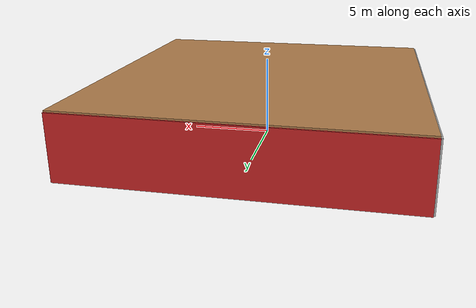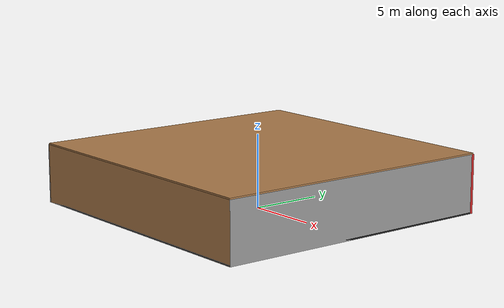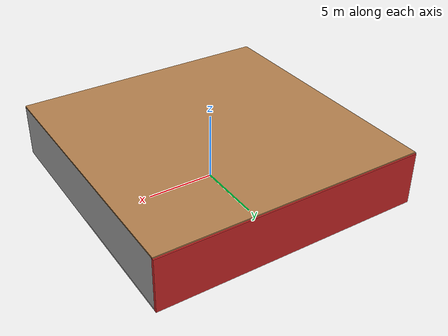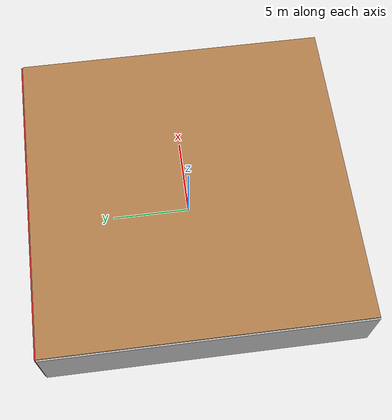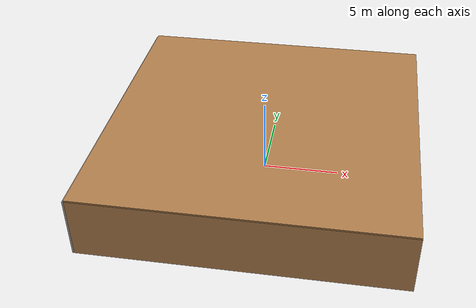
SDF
<sdf version="1.4">
 <world name="default">
  <physics type="ode">
   <max_step_size>0.001</max_step_size>
   <real_time_factor>1</real_time_factor>
   <real_time_update_rate>1000</real_time_update_rate>
   <gravity>0 0 -9.8</gravity>
  </physics>
  <scene><ambient>0.4 0.4 0.4 1</ambient><background>0.7 0.7 0.7 1</background><shadows>1</shadows></scene>
  <model name="Surrounding">
   <static>1</static>
   <link name="Ceiling">
    <collision name="Ceiling_Collision"><geometry><box><size>20 20 0.1</size></box></geometry></collision>
    <visual name="Ceiling_Visual">
     <geometry><box><size>20 20 0.1</size></box></geometry>
     <material>
      <script><uri>file://media/materials/scripts/gazebo.material</uri><name>Gazebo/Wood</name></script>
     </material>
    </visual>
    <pose>0 0 4.05 0 0 0</pose>
   </link>
   <link name="Wall_South">
    <collision name="Wall_South_Collision">
     <geometry><box><size>20 0 4</size></box></geometry>
     <pose>0 0 2 0 -0 0</pose>
    </collision>
    <visual name="Wall_South_Visual">
     <pose>0 0 2 0 -0 0</pose>
     <geometry><box><size>20 0 4</size></box></geometry>
     <material>
      <script><uri>file://media/materials/scripts/gazebo.material</uri><name>Gazebo/WoodFloor</name></script>
     </material>
    </visual>
    <velocity_decay><linear>0</linear><angular>0</angular></velocity_decay>
    <pose>0 -10 0 0 -0 0</pose>
   </link>
   <link name="Wall_East">
    <collision name="Wall_21_Collision">
     <geometry><box><size>20 0 4</size></box></geometry>
     <pose>0 0 2 0 -0 0</pose>
    </collision>
    <visual name="Wall_21_Visual">
     <pose>0 0 2 0 -0 0</pose>
     <geometry><box><size>20 0 4</size></box></geometry>
     <material>
      <script><uri>file://media/materials/scripts/gazebo.material</uri><name>Gazebo/GreyGradientSky</name></script>
     </material>
    </visual>
    <velocity_decay><linear>0</linear><angular>0</angular></velocity_decay>
    <pose>10 0 0 0 -0 1.5708</pose>
   </link>
   <link name="Wall_North">
    <collision name="Wall_22_Collision">
     <geometry><box><size>20 0.2 4</size></box></geometry>
     <pose>0 0 2 0 -0 0</pose>
    </collision>
    <visual name="Wall_22_Visual">
     <pose>0 0 2 0 -0 0</pose>
     <geometry><box><size>20 0.2 4</size></box></geometry>
     <material>
      <script><uri>file://media/materials/scripts/gazebo.material</uri><name>Gazebo/Red</name></script>
     </material>
    </visual>
    <velocity_decay><linear>0</linear><angular>0</angular></velocity_decay>
    <pose>0 10 0 0 -0 0</pose>
   </link>
   <link name="Wall_West">
    <collision name="Wall_23_Collision">
     <geometry><box><size>20 0.2 4</size></box></geometry>
     <pose>0 0 2 0 -0 0</pose>
    </collision>
    <visual name="Wall_23_Visual">
     <pose>0 0 2 0 -0 0</pose>
     <geometry><box><size>20 0.2 4</size></box></geometry>
     <material>
      <script><uri>file://media/materials/scripts/gazebo.material</uri><name>Gazebo/CloudySky</name></script>
     </material>
    </visual>
    <velocity_decay><linear>0</linear><angular>0</angular></velocity_decay>
    <pose>-10 0 0 0 0 -1.5708</pose>
   </link>
   <link name="Ground_link">
    <collision name="collision">
     <pose>0 0 .05 0 -0 0</pose>
     <geometry><box><size>20 20 0.1</size></box></geometry>
    </collision>
    <visual name="visual">
     <pose>0 0 .05 0 -0 0</pose>
     <geometry><box><size>20 20 0.1</size></box></geometry>
     <material>
      <script><uri>file://media/materials/scripts/gazebo.material</uri><name>Gazebo/FlatBlack</name></script>
     </material>
    </visual>
   </link>
   <static>1</static>
  </model>
  <spherical_coordinates>
   <surface_model>EARTH_WGS84</surface_model>
   <latitude_deg>0</latitude_deg>
   <longitude_deg>0</longitude_deg>
   <elevation>0</elevation>
   <heading_deg>0</heading_deg>
  </spherical_coordinates>
  <light name="lightball_0" type="diffuse">
   <diffuse>0.8 0.8 0.8 1</diffuse>
   <specular>0.2 0.2 0.2 1</specular>
   <attenuation>
    <range>100</range>
    <constant>0.7</constant>
    <linear>0.01</linear>
    <quadratic>0.001</quadratic>
   </attenuation>
   <direction>-0.5 0.1 -0.9</direction>
   <pose>-2.35732179589 4.60535349016 2.04243065777 0 0 0</pose>
  </light>
  <light name="lightball_1" type="diffuse">
   <diffuse>0.8 0.8 0.8 1</diffuse>
   <specular>0.2 0.2 0.2 1</specular>
   <attenuation>
    <range>100</range>
    <constant>0.7</constant>
    <linear>0.01</linear>
    <quadratic>0.001</quadratic>
   </attenuation>
   <direction>-0.5 0.1 -0.9</direction>
   <pose>-4.43184589765 3.81047980171 0.956610426185 0 0 0</pose>
  </light>
  <light name="lightball_2" type="diffuse">
   <diffuse>0.8 0.8 0.8 1</diffuse>
   <specular>0.2 0.2 0.2 1</specular>
   <attenuation>
    <range>100</range>
    <constant>0.7</constant>
    <linear>0.01</linear>
    <quadratic>0.001</quadratic>
   </attenuation>
   <direction>-0.5 0.1 -0.9</direction>
   <pose>2.52548526726 -0.144671937285 1.86689301867 0 0 0</pose>
  </light>
  <light name="lightball_3" type="diffuse">
   <diffuse>0.8 0.8 0.8 1</diffuse>
   <specular>0.2 0.2 0.2 1</specular>
   <attenuation>
    <range>100</range>
    <constant>0.7</constant>
    <linear>0.01</linear>
    <quadratic>0.001</quadratic>
   </attenuation>
   <direction>-0.5 0.1 -0.9</direction>
   <pose>-3.14672533132 -3.49658847761 3.46323921667 0 0 0</pose>
  </light>
  <light name="lightball_4" type="diffuse">
   <diffuse>0.8 0.8 0.8 1</diffuse>
   <specular>0.2 0.2 0.2 1</specular>
   <attenuation>
    <range>100</range>
    <constant>0.7</constant>
    <linear>0.01</linear>
    <quadratic>0.001</quadratic>
   </attenuation>
   <direction>-0.5 0.1 -0.9</direction>
   <pose>8.57379912786 -2.42152381555 3.41891960337 0 0 0</pose>
  </light>
  <light name="lightball_5" type="diffuse">
   <diffuse>0.8 0.8 0.8 1</diffuse>
   <specular>0.2 0.2 0.2 1</specular>
   <attenuation>
    <range>100</range>
    <constant>0.7</constant>
    <linear>0.01</linear>
    <quadratic>0.001</quadratic>
   </attenuation>
   <direction>-0.5 0.1 -0.9</direction>
   <pose>8.21720585625 5.76323944768 3.55144426671 0 0 0</pose>
  </light>
  <light name="lightball_6" type="diffuse">
   <diffuse>0.8 0.8 0.8 1</diffuse>
   <specular>0.2 0.2 0.2 1</specular>
   <attenuation>
    <range>100</range>
    <constant>0.7</constant>
    <linear>0.01</linear>
    <quadratic>0.001</quadratic>
   </attenuation>
   <direction>-0.5 0.1 -0.9</direction>
   <pose>-5.63985321949 3.84670569365 1.55603379661 0 0 0</pose>
  </light>
  <light name="lightball_7" type="diffuse">
   <diffuse>0.8 0.8 0.8 1</diffuse>
   <specular>0.2 0.2 0.2 1</specular>
   <attenuation>
    <range>100</range>
    <constant>0.7</constant>
    <linear>0.01</linear>
    <quadratic>0.001</quadratic>
   </attenuation>
   <direction>-0.5 0.1 -0.9</direction>
   <pose>-5.61335895839 0.356429351113 0.654023161492 0 0 0</pose>
  </light>
  <light name="lightball_8" type="diffuse">
   <diffuse>0.8 0.8 0.8 1</diffuse>
   <specular>0.2 0.2 0.2 1</specular>
   <attenuation>
    <range>100</range>
    <constant>0.7</constant>
    <linear>0.01</linear>
    <quadratic>0.001</quadratic>
   </attenuation>
   <direction>-0.5 0.1 -0.9</direction>
   <pose>-7.18749909338 4.88622989466 3.27669822251 0 0 0</pose>
  </light>
  <light name="lightball_9" type="diffuse">
   <diffuse>0.8 0.8 0.8 1</diffuse>
   <specular>0.2 0.2 0.2 1</specular>
   <attenuation>
    <range>100</range>
    <constant>0.7</constant>
    <linear>0.01</linear>
    <quadratic>0.001</quadratic>
   </attenuation>
   <direction>-0.5 0.1 -0.9</direction>
   <pose>-3.62628600722 -3.08996708629 3.03408803412 0 0 0</pose>
  </light>
  <light name="lightball_10" type="diffuse">
   <diffuse>0.8 0.8 0.8 1</diffuse>
   <specular>0.2 0.2 0.2 1</specular>
   <attenuation>
    <range>100</range>
    <constant>0.7</constant>
    <linear>0.01</linear>
    <quadratic>0.001</quadratic>
   </attenuation>
   <direction>-0.5 0.1 -0.9</direction>
   <pose>-4.30892395352 5.57395772339 2.10518637874 0 0 0</pose>
  </light>
  <light name="lightball_11" type="diffuse">
   <diffuse>0.8 0.8 0.8 1</diffuse>
   <specular>0.2 0.2 0.2 1</specular>
   <attenuation>
    <range>100</range>
    <constant>0.7</constant>
    <linear>0.01</linear>
    <quadratic>0.001</quadratic>
   </attenuation>
   <direction>-0.5 0.1 -0.9</direction>
   <pose>-1.64197969532 -9.847175956 0.770879814654 0 0 0</pose>
  </light>
  <include><uri>model://table</uri><pose>-4.33138954016 -7.7725645245 0 0 0 0.266247911628</pose></include>
  <include><uri>model://table</uri><pose>-3.7597292352 -0.789506643291 0 0 0 2.81997083958</pose></include>
  <include><uri>model://cabinet</uri><pose>-0.809857118915 -7.29499409689 0 0 0 2.39865174166</pose></include>
  <include><uri>model://cabinet</uri><pose>-2.23773035873 3.95229600372 0 0 0 2.34059976484</pose></include>
  <include><uri>model://cabinet</uri><pose>0.703108078439 -4.32194665772 0 0 0 2.33751918106</pose></include>
  <include><uri>model://table</uri><pose>0.837589796689 1.37601359295 0 0 0 2.19773090668</pose></include>
  <include>
   <uri>model://construction_cone</uri>
   <pose>4.35784444687 -2.06656703953 0 0 0 0.0664224990053</pose>
  </include>
  <include><uri>model://cabinet</uri><pose>6.94610095863 -8.22426434663 0 0 0 0.919298037709</pose></include>
  <include><uri>model://table</uri><pose>7.87706691788 -1.38755043342 0 0 0 3.09863297173</pose></include>
 </world>
</sdf>

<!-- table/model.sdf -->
<sdf version="1.5">
  <model name="table">
    <static>true</static>
    <link name="link">
      <collision name="surface">
        <pose>0 0 1.0 0 0 0</pose>
        <geometry>
          <box>
            <size>1.5 0.8 0.03</size>
          </box>
        </geometry>
        <surface>
          <friction>
            <ode>
              <mu>0.6</mu>
              <mu2>0.6</mu2>
            </ode>
          </friction>
        </surface>
      </collision>
      <visual name="visual1">
        <pose>0 0 1.0 0 0 0</pose>
        <geometry>
          <box>
            <size>1.5 0.8 0.03</size>
          </box>
        </geometry>
        <material>
          <script>
            <uri>model://media/materials/scripts/gazebo.material</uri>
            <name>Gazebo/Wood</name>
          </script>
        </material>
      </visual>
      <collision name="front_left_leg">
        <pose>0.68 0.38 0.5 0 0 0</pose>
        <geometry>
          <cylinder>
            <radius>0.02</radius>
            <length>1.0</length>
          </cylinder>
        </geometry>
      </collision>
      <visual name="front_left_leg">
        <pose>0.68 0.38 0.5 0 0 0</pose>
        <geometry>
          <cylinder>
            <radius>0.02</radius>
            <length>1.0</length>
          </cylinder>
        </geometry>
        <material>
          <script>
            <uri>model://media/materials/scripts/gazebo.material</uri>
            <name>Gazebo/Grey</name>
          </script>
        </material>
      </visual>
      <collision name="front_right_leg">
        <pose>0.68 -0.38 0.5 0 0 0</pose>
        <geometry>
          <cylinder>
            <radius>0.02</radius>
            <length>1.0</length>
          </cylinder>
        </geometry>
      </collision>
      <visual name="front_right_leg">
        <pose>0.68 -0.38 0.5 0 0 0</pose>
        <geometry>
          <cylinder>
            <radius>0.02</radius>
            <length>1.0</length>
          </cylinder>
        </geometry>
        <material>
          <script>
            <uri>model://media/materials/scripts/gazebo.material</uri>
            <name>Gazebo/Grey</name>
          </script>
        </material>
      </visual>
      <collision name="back_right_leg">
        <pose>-0.68 -0.38 0.5 0 0 0</pose>
        <geometry>
          <cylinder>
            <radius>0.02</radius>
            <length>1.0</length>
          </cylinder>
        </geometry>
      </collision>
      <visual name="back_right_leg">
        <pose>-0.68 -0.38 0.5 0 0 0</pose>
        <geometry>
          <cylinder>
            <radius>0.02</radius>
            <length>1.0</length>
          </cylinder>
        </geometry>
        <material>
          <script>
            <uri>model://media/materials/scripts/gazebo.material</uri>
            <name>Gazebo/Grey</name>
          </script>
        </material>
      </visual>
      <collision name="back_left_leg">
        <pose>-0.68 0.38 0.5 0 0 0</pose>
        <geometry>
          <cylinder>
            <radius>0.02</radius>
            <length>1.0</length>
          </cylinder>
        </geometry>
      </collision>
      <visual name="back_left_leg">
        <pose>-0.68 0.38 0.5 0 0 0</pose>
        <geometry>
          <cylinder>
            <radius>0.02</radius>
            <length>1.0</length>
          </cylinder>
        </geometry>
        <material>
          <script>
            <uri>model://media/materials/scripts/gazebo.material</uri>
            <name>Gazebo/Grey</name>
          </script>
        </material>
      </visual>
    </link>
  </model>
</sdf>

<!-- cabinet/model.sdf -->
<sdf version="1.5">
  <model name="cabinet">
    <static>true</static>
    <link name="cabinet_bottom_plate">
      <inertial>
        <pose>0 0 -1 0 0 0</pose>
        <inertia>
          <ixx>2.050000</ixx>
          <ixy>0</ixy>
          <ixz>0</ixz>
          <iyy>2.050000</iyy>
          <iyz>0</iyz>
          <izz>2.050000</izz>
        </inertia>
        <mass>25.000000</mass>
      </inertial>
      <collision name="cabinet_bottom_plate_geom">
        <pose>0 0 0.010000 0 0 0</pose>
        <geometry>
          <box>
            <size>0.450000 0.450000 0.020000</size>
          </box>
        </geometry>
      </collision>
      <visual name="cabinet_bottom_plate_geom_visual">
        <pose>0 0 0.010000 0 0 0</pose>
        <geometry>
          <box>
            <size>0.450000 0.450000 0.020000</size>
          </box>
        </geometry>
        <material>
          <script>
            <uri>model://media/materials/scripts/gazebo.material</uri>
            <name>Gazebo/Wood</name>
          </script>
        </material>
      </visual>
      <collision name="cabinet_bottom_plate_geom_cabinet_back_plate">
        <pose>0.235000 0 0.510000 0 0 0</pose>
        <geometry>
          <box>
            <size>0.020000 0.450000 1.020000</size>
          </box>
        </geometry>
      </collision>
      <visual name="cabinet_bottom_plate_geom_cabinet_back_plate_visual">
        <pose>0.235000 0 0.510000 0 0 0</pose>
        <geometry>
          <box>
            <size>0.020000 0.450000 1.020000</size>
          </box>
        </geometry>
        <material>
          <script>
            <uri>model://media/materials/scripts/gazebo.material</uri>
            <name>Gazebo/Wood</name>
          </script>
        </material>
      </visual>
      <collision name="cabinet_bottom_plate_geom_cabinet_left_plate">
        <pose>0 0.235000 0.510000 0 0 0</pose>
        <geometry>
          <box>
            <size>0.450000 0.020000 1.020000</size>
          </box>
        </geometry>
      </collision>
      <visual name="cabinet_bottom_plate_geom_cabinet_left_plate_visual">
        <pose>0 0.235000 0.510000 0 0 0</pose>
        <geometry>
          <box>
            <size>0.450000 0.020000 1.020000</size>
          </box>
        </geometry>
        <material>
          <script>
            <uri>model://media/materials/scripts/gazebo.material</uri>
            <name>Gazebo/Wood</name>
          </script>
        </material>
      </visual>
      <collision name="cabinet_bottom_plate_geom_cabinet_middle_plate">
        <pose>0 0 0.510000 0 0 0</pose>
        <geometry>
          <box>
            <size>0.450000 0.450000 0.020000</size>
          </box>
        </geometry>
      </collision>
      <visual name="cabinet_bottom_plate_geom_cabinet_middle_plate_visual">
        <pose>0 0 0.510000 0 0 0</pose>
        <geometry>
          <box>
            <size>0.450000 0.450000 0.020000</size>
          </box>
        </geometry>
        <material>
          <script>
            <uri>model://media/materials/scripts/gazebo.material</uri>
            <name>Gazebo/Wood</name>
          </script>
        </material>
      </visual>
      <collision name="cabinet_bottom_plate_geom_cabinet_right_plate">
        <pose>0 -0.235000 0.510000 0 0 0</pose>
        <geometry>
          <box>
            <size>0.450000 0.020000 1.020000</size>
          </box>
        </geometry>
      </collision>
      <visual name="cabinet_bottom_plate_geom_cabinet_right_plate_visual">
        <pose>0 -0.235000 0.510000 0 0 0</pose>
        <geometry>
          <box>
            <size>0.450000 0.020000 1.020000</size>
          </box>
        </geometry>
        <material>
          <script>
            <uri>model://media/materials/scripts/gazebo.material</uri>
            <name>Gazebo/Wood</name>
          </script>
        </material>
      </visual>
      <collision name="cabinet_bottom_plate_geom_cabinet_top_plate">
        <pose>0 0 1.010000 0 0 0</pose>
        <geometry>
          <box>
            <size>0.450000 0.450000 0.020000</size>
          </box>
        </geometry>
      </collision>
      <visual name="cabinet_bottom_plate_geom_cabinet_top_plate_visual">
        <pose>0 0 1.010000 0 0 0</pose>
        <geometry>
          <box>
            <size>0.450000 0.450000 0.020000</size>
          </box>
        </geometry>
        <material>
          <script>
            <uri>model://media/materials/scripts/gazebo.material</uri>
            <name>Gazebo/Wood</name>
          </script>
        </material>
      </visual>
    </link>
  </model>
</sdf>

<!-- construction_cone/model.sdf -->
<sdf version="1.5">
  <model name="Construction Cone">
    <link name="link">
      <collision name="collision">
        <geometry>
          <mesh>
            <scale>10 10 10</scale>
            <uri>file://isr-testbed/construction_cone/meshes/construction_cone.dae</uri>
          </mesh>
        </geometry>
      </collision>
      <visual name="visual">
        <geometry>
          <mesh>
            <scale>10 10 10</scale>
            <uri>file://isr-testbed/construction_cone/meshes/construction_cone.dae</uri>
          </mesh>
        </geometry>
      </visual>
    </link>
  </model>
</sdf>
